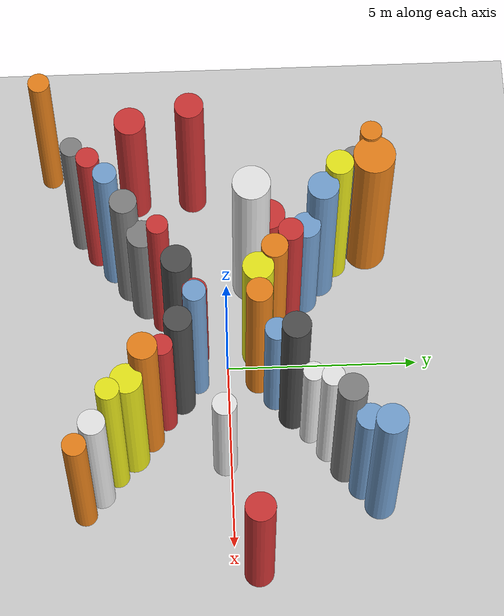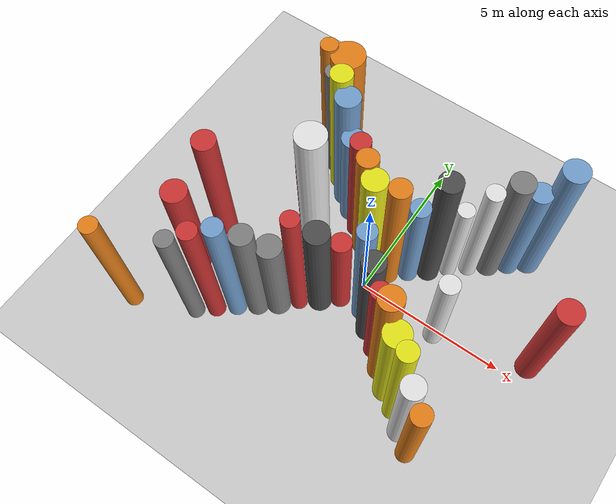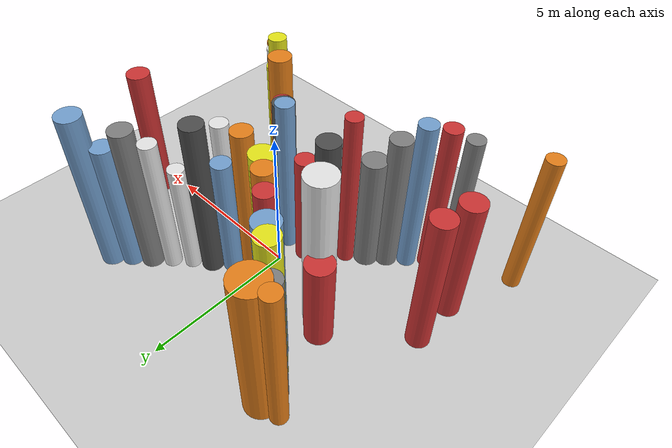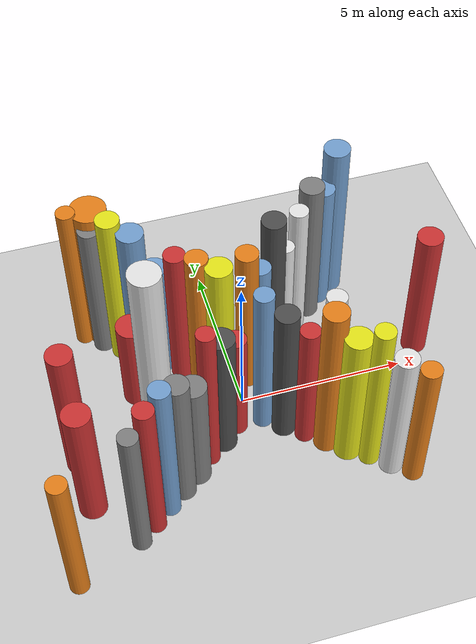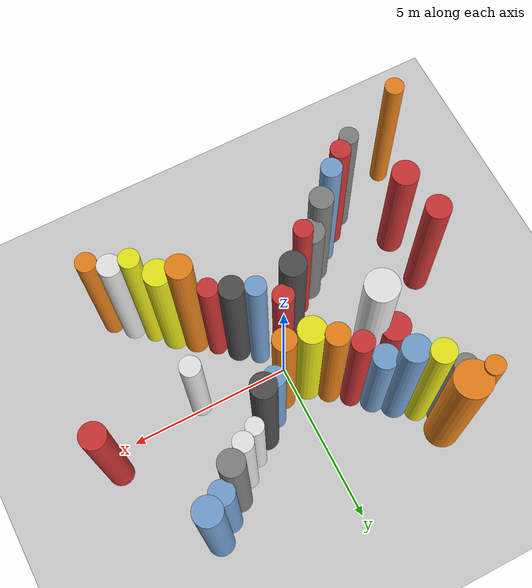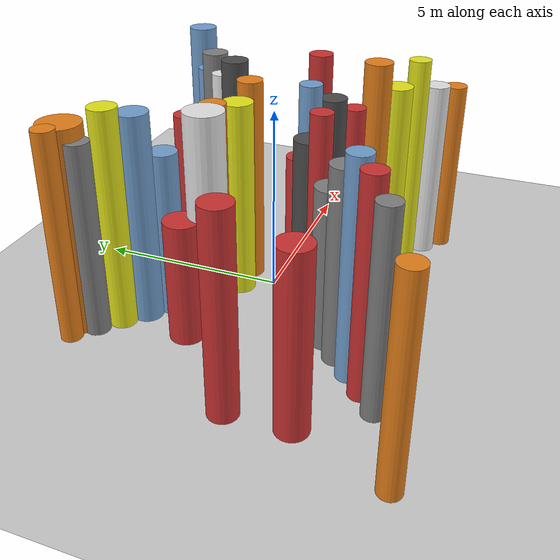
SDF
<?xml version='1.0'?>
<sdf version='1.6'>
  <world name='routeA_rl_v1__dense_recovery__rl_test__bottleneck_corridor__000018'>
    <!-- Sun light -->
    <light name='sun' type='directional'>
      <cast_shadows>1</cast_shadows>
      <pose>0 0 10 0 0 0</pose>
      <diffuse>0.8 0.8 0.8 1</diffuse>
      <specular>0.2 0.2 0.2 1</specular>
      <attenuation>
        <range>1000</range>
        <constant>0.9</constant>
        <linear>0.01</linear>
        <quadratic>0.001</quadratic>
      </attenuation>
      <direction>-0.5 0.1 -0.9</direction>
    </light>

    <!-- Ground plane -->
    <model name='ground_plane'>
      <static>1</static>
      <link name='link'>
        <collision name='collision'>
          <geometry>
            <plane>
              <normal>0 0 1</normal>
              <size>100 100</size>
            </plane>
          </geometry>
          <surface>
            <contact>
              <collide_bitmask>65535</collide_bitmask>
              <ode/>
            </contact>
            <friction>
              <ode>
                <mu>100</mu>
                <mu2>50</mu2>
              </ode>
              <torsional><ode/></torsional>
            </friction>
            <bounce/>
          </surface>
          <max_contacts>10</max_contacts>
        </collision>
        <visual name='visual'>
          <cast_shadows>0</cast_shadows>
          <geometry>
            <plane>
              <normal>0 0 1</normal>
              <size>100 100</size>
            </plane>
          </geometry>
          <material>
            <script>
              <uri>file://media/materials/scripts/gazebo.material</uri>
              <n>Gazebo/Grey</n>
            </script>
          </material>
        </visual>
      </link>
    </model>

    <!-- Environment -->
    <magnetic_field>6e-06 2.3e-05 -4.2e-05</magnetic_field>
    <atmosphere type='adiabatic'/>
    <physics name='default_physics' default='0' type='ode'>
      <gravity>0 0 -9.8</gravity>
      <max_step_size>0.004</max_step_size>
      <real_time_factor>1</real_time_factor>
      <real_time_update_rate>250</real_time_update_rate>
    </physics>
    <scene>
      <ambient>0.4 0.4 0.4 1</ambient>
      <background>0.7 0.7 0.7 1</background>
      <shadows>1</shadows>
    </scene>
    <wind/>
    <spherical_coordinates>
      <surface_model>EARTH_WGS84</surface_model>
      <latitude_deg>0</latitude_deg>
      <longitude_deg>0</longitude_deg>
      <elevation>0</elevation>
      <heading_deg>0</heading_deg>
    </spherical_coordinates>

    <!-- ============ OBSTACLES (40) ============ -->
    <model name='funnel_l_0'>
      <static>1</static>
      <link name='link'>
        <visual name='visual'>
          <geometry>
            <cylinder>
              <radius>0.2794</radius>
              <length>5.1567</length>
            </cylinder>
          </geometry>
          <material>
            <script>
              <n>Gazebo/Grey</n>
              <uri>file://media/materials/scripts/gazebo.material</uri>
            </script>
            <ambient>0.5 0.5 0.5 1</ambient>
          </material>
        </visual>
        <collision name='collision'>
          <geometry>
            <cylinder>
              <radius>0.2794</radius>
              <length>5.1567</length>
            </cylinder>
          </geometry>
          <max_contacts>10</max_contacts>
          <surface>
            <contact><ode/></contact>
            <bounce/>
            <friction>
              <ode><mu>1</mu><mu2>1</mu2></ode>
              <torsional><ode/></torsional>
            </friction>
          </surface>
        </collision>
      </link>
      <pose>-4.0000 -3.8000 2.5783 0 0 0.0000</pose>
    </model>

    <model name='funnel_r_0'>
      <static>1</static>
      <link name='link'>
        <visual name='visual'>
          <geometry>
            <cylinder>
              <radius>0.2776</radius>
              <length>5.4865</length>
            </cylinder>
          </geometry>
          <material>
            <script>
              <n>Gazebo/Orange</n>
              <uri>file://media/materials/scripts/gazebo.material</uri>
            </script>
            <ambient>0.9 0.5 0.1 1</ambient>
          </material>
        </visual>
        <collision name='collision'>
          <geometry>
            <cylinder>
              <radius>0.2776</radius>
              <length>5.4865</length>
            </cylinder>
          </geometry>
          <max_contacts>10</max_contacts>
          <surface>
            <contact><ode/></contact>
            <bounce/>
            <friction>
              <ode><mu>1</mu><mu2>1</mu2></ode>
              <torsional><ode/></torsional>
            </friction>
          </surface>
        </collision>
      </link>
      <pose>-4.0000 3.8000 2.7433 0 0 0.0000</pose>
    </model>

    <model name='funnel_l_1'>
      <static>1</static>
      <link name='link'>
        <visual name='visual'>
          <geometry>
            <cylinder>
              <radius>0.2926</radius>
              <length>5.4997</length>
            </cylinder>
          </geometry>
          <material>
            <script>
              <n>Gazebo/Red</n>
              <uri>file://media/materials/scripts/gazebo.material</uri>
            </script>
            <ambient>0.8 0.2 0.2 1</ambient>
          </material>
        </visual>
        <collision name='collision'>
          <geometry>
            <cylinder>
              <radius>0.2926</radius>
              <length>5.4997</length>
            </cylinder>
          </geometry>
          <max_contacts>10</max_contacts>
          <surface>
            <contact><ode/></contact>
            <bounce/>
            <friction>
              <ode><mu>1</mu><mu2>1</mu2></ode>
              <torsional><ode/></torsional>
            </friction>
          </surface>
        </collision>
      </link>
      <pose>-3.4857 -3.3714 2.7498 0 0 0.0000</pose>
    </model>

    <model name='funnel_r_1'>
      <static>1</static>
      <link name='link'>
        <visual name='visual'>
          <geometry>
            <cylinder>
              <radius>0.3191</radius>
              <length>5.0633</length>
            </cylinder>
          </geometry>
          <material>
            <script>
              <n>Gazebo/Grey</n>
              <uri>file://media/materials/scripts/gazebo.material</uri>
            </script>
            <ambient>0.5 0.5 0.5 1</ambient>
          </material>
        </visual>
        <collision name='collision'>
          <geometry>
            <cylinder>
              <radius>0.3191</radius>
              <length>5.0633</length>
            </cylinder>
          </geometry>
          <max_contacts>10</max_contacts>
          <surface>
            <contact><ode/></contact>
            <bounce/>
            <friction>
              <ode><mu>1</mu><mu2>1</mu2></ode>
              <torsional><ode/></torsional>
            </friction>
          </surface>
        </collision>
      </link>
      <pose>-3.4857 3.3714 2.5317 0 0 0.0000</pose>
    </model>

    <model name='funnel_l_2'>
      <static>1</static>
      <link name='link'>
        <visual name='visual'>
          <geometry>
            <cylinder>
              <radius>0.3028</radius>
              <length>5.5939</length>
            </cylinder>
          </geometry>
          <material>
            <script>
              <n>Gazebo/Blue</n>
              <uri>file://media/materials/scripts/gazebo.material</uri>
            </script>
            <ambient>0.447 0.624 0.812 1</ambient>
          </material>
        </visual>
        <collision name='collision'>
          <geometry>
            <cylinder>
              <radius>0.3028</radius>
              <length>5.5939</length>
            </cylinder>
          </geometry>
          <max_contacts>10</max_contacts>
          <surface>
            <contact><ode/></contact>
            <bounce/>
            <friction>
              <ode><mu>1</mu><mu2>1</mu2></ode>
              <torsional><ode/></torsional>
            </friction>
          </surface>
        </collision>
      </link>
      <pose>-2.9714 -2.9429 2.7969 0 0 0.0000</pose>
    </model>

    <model name='funnel_r_2'>
      <static>1</static>
      <link name='link'>
        <visual name='visual'>
          <geometry>
            <cylinder>
              <radius>0.3510</radius>
              <length>5.7535</length>
            </cylinder>
          </geometry>
          <material>
            <script>
              <n>Gazebo/Yellow</n>
              <uri>file://media/materials/scripts/gazebo.material</uri>
            </script>
            <ambient>0.9 0.9 0.1 1</ambient>
          </material>
        </visual>
        <collision name='collision'>
          <geometry>
            <cylinder>
              <radius>0.3510</radius>
              <length>5.7535</length>
            </cylinder>
          </geometry>
          <max_contacts>10</max_contacts>
          <surface>
            <contact><ode/></contact>
            <bounce/>
            <friction>
              <ode><mu>1</mu><mu2>1</mu2></ode>
              <torsional><ode/></torsional>
            </friction>
          </surface>
        </collision>
      </link>
      <pose>-2.9714 2.9429 2.8767 0 0 0.0000</pose>
    </model>

    <model name='funnel_l_3'>
      <static>1</static>
      <link name='link'>
        <visual name='visual'>
          <geometry>
            <cylinder>
              <radius>0.3493</radius>
              <length>5.0410</length>
            </cylinder>
          </geometry>
          <material>
            <script>
              <n>Gazebo/Grey</n>
              <uri>file://media/materials/scripts/gazebo.material</uri>
            </script>
            <ambient>0.5 0.5 0.5 1</ambient>
          </material>
        </visual>
        <collision name='collision'>
          <geometry>
            <cylinder>
              <radius>0.3493</radius>
              <length>5.0410</length>
            </cylinder>
          </geometry>
          <max_contacts>10</max_contacts>
          <surface>
            <contact><ode/></contact>
            <bounce/>
            <friction>
              <ode><mu>1</mu><mu2>1</mu2></ode>
              <torsional><ode/></torsional>
            </friction>
          </surface>
        </collision>
      </link>
      <pose>-2.4571 -2.5143 2.5205 0 0 0.0000</pose>
    </model>

    <model name='funnel_r_3'>
      <static>1</static>
      <link name='link'>
        <visual name='visual'>
          <geometry>
            <cylinder>
              <radius>0.3969</radius>
              <length>5.5139</length>
            </cylinder>
          </geometry>
          <material>
            <script>
              <n>Gazebo/Blue</n>
              <uri>file://media/materials/scripts/gazebo.material</uri>
            </script>
            <ambient>0.447 0.624 0.812 1</ambient>
          </material>
        </visual>
        <collision name='collision'>
          <geometry>
            <cylinder>
              <radius>0.3969</radius>
              <length>5.5139</length>
            </cylinder>
          </geometry>
          <max_contacts>10</max_contacts>
          <surface>
            <contact><ode/></contact>
            <bounce/>
            <friction>
              <ode><mu>1</mu><mu2>1</mu2></ode>
              <torsional><ode/></torsional>
            </friction>
          </surface>
        </collision>
      </link>
      <pose>-2.4571 2.5143 2.7569 0 0 0.0000</pose>
    </model>

    <model name='funnel_l_4'>
      <static>1</static>
      <link name='link'>
        <visual name='visual'>
          <geometry>
            <cylinder>
              <radius>0.3925</radius>
              <length>4.2149</length>
            </cylinder>
          </geometry>
          <material>
            <script>
              <n>Gazebo/Grey</n>
              <uri>file://media/materials/scripts/gazebo.material</uri>
            </script>
            <ambient>0.5 0.5 0.5 1</ambient>
          </material>
        </visual>
        <collision name='collision'>
          <geometry>
            <cylinder>
              <radius>0.3925</radius>
              <length>4.2149</length>
            </cylinder>
          </geometry>
          <max_contacts>10</max_contacts>
          <surface>
            <contact><ode/></contact>
            <bounce/>
            <friction>
              <ode><mu>1</mu><mu2>1</mu2></ode>
              <torsional><ode/></torsional>
            </friction>
          </surface>
        </collision>
      </link>
      <pose>-1.9429 -2.0857 2.1074 0 0 0.0000</pose>
    </model>

    <model name='funnel_r_4'>
      <static>1</static>
      <link name='link'>
        <visual name='visual'>
          <geometry>
            <cylinder>
              <radius>0.3689</radius>
              <length>4.4056</length>
            </cylinder>
          </geometry>
          <material>
            <script>
              <n>Gazebo/Blue</n>
              <uri>file://media/materials/scripts/gazebo.material</uri>
            </script>
            <ambient>0.447 0.624 0.812 1</ambient>
          </material>
        </visual>
        <collision name='collision'>
          <geometry>
            <cylinder>
              <radius>0.3689</radius>
              <length>4.4056</length>
            </cylinder>
          </geometry>
          <max_contacts>10</max_contacts>
          <surface>
            <contact><ode/></contact>
            <bounce/>
            <friction>
              <ode><mu>1</mu><mu2>1</mu2></ode>
              <torsional><ode/></torsional>
            </friction>
          </surface>
        </collision>
      </link>
      <pose>-1.9429 2.0857 2.2028 0 0 0.0000</pose>
    </model>

    <model name='funnel_l_5'>
      <static>1</static>
      <link name='link'>
        <visual name='visual'>
          <geometry>
            <cylinder>
              <radius>0.2713</radius>
              <length>5.7019</length>
            </cylinder>
          </geometry>
          <material>
            <script>
              <n>Gazebo/Red</n>
              <uri>file://media/materials/scripts/gazebo.material</uri>
            </script>
            <ambient>0.8 0.2 0.2 1</ambient>
          </material>
        </visual>
        <collision name='collision'>
          <geometry>
            <cylinder>
              <radius>0.2713</radius>
              <length>5.7019</length>
            </cylinder>
          </geometry>
          <max_contacts>10</max_contacts>
          <surface>
            <contact><ode/></contact>
            <bounce/>
            <friction>
              <ode><mu>1</mu><mu2>1</mu2></ode>
              <torsional><ode/></torsional>
            </friction>
          </surface>
        </collision>
      </link>
      <pose>-1.4286 -1.6571 2.8509 0 0 0.0000</pose>
    </model>

    <model name='funnel_r_5'>
      <static>1</static>
      <link name='link'>
        <visual name='visual'>
          <geometry>
            <cylinder>
              <radius>0.3190</radius>
              <length>5.2060</length>
            </cylinder>
          </geometry>
          <material>
            <script>
              <n>Gazebo/Red</n>
              <uri>file://media/materials/scripts/gazebo.material</uri>
            </script>
            <ambient>0.8 0.2 0.2 1</ambient>
          </material>
        </visual>
        <collision name='collision'>
          <geometry>
            <cylinder>
              <radius>0.3190</radius>
              <length>5.2060</length>
            </cylinder>
          </geometry>
          <max_contacts>10</max_contacts>
          <surface>
            <contact><ode/></contact>
            <bounce/>
            <friction>
              <ode><mu>1</mu><mu2>1</mu2></ode>
              <torsional><ode/></torsional>
            </friction>
          </surface>
        </collision>
      </link>
      <pose>-1.4286 1.6571 2.6030 0 0 0.0000</pose>
    </model>

    <model name='funnel_l_6'>
      <static>1</static>
      <link name='link'>
        <visual name='visual'>
          <geometry>
            <cylinder>
              <radius>0.3890</radius>
              <length>4.8120</length>
            </cylinder>
          </geometry>
          <material>
            <script>
              <n>Gazebo/DarkGrey</n>
              <uri>file://media/materials/scripts/gazebo.material</uri>
            </script>
            <ambient>0.3 0.3 0.3 1</ambient>
          </material>
        </visual>
        <collision name='collision'>
          <geometry>
            <cylinder>
              <radius>0.3890</radius>
              <length>4.8120</length>
            </cylinder>
          </geometry>
          <max_contacts>10</max_contacts>
          <surface>
            <contact><ode/></contact>
            <bounce/>
            <friction>
              <ode><mu>1</mu><mu2>1</mu2></ode>
              <torsional><ode/></torsional>
            </friction>
          </surface>
        </collision>
      </link>
      <pose>-0.9143 -1.2286 2.4060 0 0 0.0000</pose>
    </model>

    <model name='funnel_r_6'>
      <static>1</static>
      <link name='link'>
        <visual name='visual'>
          <geometry>
            <cylinder>
              <radius>0.3374</radius>
              <length>5.3600</length>
            </cylinder>
          </geometry>
          <material>
            <script>
              <n>Gazebo/Orange</n>
              <uri>file://media/materials/scripts/gazebo.material</uri>
            </script>
            <ambient>0.9 0.5 0.1 1</ambient>
          </material>
        </visual>
        <collision name='collision'>
          <geometry>
            <cylinder>
              <radius>0.3374</radius>
              <length>5.3600</length>
            </cylinder>
          </geometry>
          <max_contacts>10</max_contacts>
          <surface>
            <contact><ode/></contact>
            <bounce/>
            <friction>
              <ode><mu>1</mu><mu2>1</mu2></ode>
              <torsional><ode/></torsional>
            </friction>
          </surface>
        </collision>
      </link>
      <pose>-0.9143 1.2286 2.6800 0 0 0.0000</pose>
    </model>

    <model name='funnel_l_7'>
      <static>1</static>
      <link name='link'>
        <visual name='visual'>
          <geometry>
            <cylinder>
              <radius>0.3194</radius>
              <length>4.0968</length>
            </cylinder>
          </geometry>
          <material>
            <script>
              <n>Gazebo/Red</n>
              <uri>file://media/materials/scripts/gazebo.material</uri>
            </script>
            <ambient>0.8 0.2 0.2 1</ambient>
          </material>
        </visual>
        <collision name='collision'>
          <geometry>
            <cylinder>
              <radius>0.3194</radius>
              <length>4.0968</length>
            </cylinder>
          </geometry>
          <max_contacts>10</max_contacts>
          <surface>
            <contact><ode/></contact>
            <bounce/>
            <friction>
              <ode><mu>1</mu><mu2>1</mu2></ode>
              <torsional><ode/></torsional>
            </friction>
          </surface>
        </collision>
      </link>
      <pose>-0.4000 -0.8000 2.0484 0 0 0.0000</pose>
    </model>

    <model name='funnel_r_7'>
      <static>1</static>
      <link name='link'>
        <visual name='visual'>
          <geometry>
            <cylinder>
              <radius>0.3954</radius>
              <length>5.2831</length>
            </cylinder>
          </geometry>
          <material>
            <script>
              <n>Gazebo/Yellow</n>
              <uri>file://media/materials/scripts/gazebo.material</uri>
            </script>
            <ambient>0.9 0.9 0.1 1</ambient>
          </material>
        </visual>
        <collision name='collision'>
          <geometry>
            <cylinder>
              <radius>0.3954</radius>
              <length>5.2831</length>
            </cylinder>
          </geometry>
          <max_contacts>10</max_contacts>
          <surface>
            <contact><ode/></contact>
            <bounce/>
            <friction>
              <ode><mu>1</mu><mu2>1</mu2></ode>
              <torsional><ode/></torsional>
            </friction>
          </surface>
        </collision>
      </link>
      <pose>-0.4000 0.8000 2.6415 0 0 0.0000</pose>
    </model>

    <model name='funnel_out_l_0'>
      <static>1</static>
      <link name='link'>
        <visual name='visual'>
          <geometry>
            <cylinder>
              <radius>0.2914</radius>
              <length>5.6717</length>
            </cylinder>
          </geometry>
          <material>
            <script>
              <n>Gazebo/Blue</n>
              <uri>file://media/materials/scripts/gazebo.material</uri>
            </script>
            <ambient>0.447 0.624 0.812 1</ambient>
          </material>
        </visual>
        <collision name='collision'>
          <geometry>
            <cylinder>
              <radius>0.2914</radius>
              <length>5.6717</length>
            </cylinder>
          </geometry>
          <max_contacts>10</max_contacts>
          <surface>
            <contact><ode/></contact>
            <bounce/>
            <friction>
              <ode><mu>1</mu><mu2>1</mu2></ode>
              <torsional><ode/></torsional>
            </friction>
          </surface>
        </collision>
      </link>
      <pose>0.4000 -0.8000 2.8359 0 0 0.0000</pose>
    </model>

    <model name='funnel_out_r_0'>
      <static>1</static>
      <link name='link'>
        <visual name='visual'>
          <geometry>
            <cylinder>
              <radius>0.3345</radius>
              <length>5.5892</length>
            </cylinder>
          </geometry>
          <material>
            <script>
              <n>Gazebo/Orange</n>
              <uri>file://media/materials/scripts/gazebo.material</uri>
            </script>
            <ambient>0.9 0.5 0.1 1</ambient>
          </material>
        </visual>
        <collision name='collision'>
          <geometry>
            <cylinder>
              <radius>0.3345</radius>
              <length>5.5892</length>
            </cylinder>
          </geometry>
          <max_contacts>10</max_contacts>
          <surface>
            <contact><ode/></contact>
            <bounce/>
            <friction>
              <ode><mu>1</mu><mu2>1</mu2></ode>
              <torsional><ode/></torsional>
            </friction>
          </surface>
        </collision>
      </link>
      <pose>0.4000 0.8000 2.7946 0 0 0.0000</pose>
    </model>

    <model name='funnel_out_l_1'>
      <static>1</static>
      <link name='link'>
        <visual name='visual'>
          <geometry>
            <cylinder>
              <radius>0.3530</radius>
              <length>5.2015</length>
            </cylinder>
          </geometry>
          <material>
            <script>
              <n>Gazebo/DarkGrey</n>
              <uri>file://media/materials/scripts/gazebo.material</uri>
            </script>
            <ambient>0.3 0.3 0.3 1</ambient>
          </material>
        </visual>
        <collision name='collision'>
          <geometry>
            <cylinder>
              <radius>0.3530</radius>
              <length>5.2015</length>
            </cylinder>
          </geometry>
          <max_contacts>10</max_contacts>
          <surface>
            <contact><ode/></contact>
            <bounce/>
            <friction>
              <ode><mu>1</mu><mu2>1</mu2></ode>
              <torsional><ode/></torsional>
            </friction>
          </surface>
        </collision>
      </link>
      <pose>0.9143 -1.2286 2.6008 0 0 0.0000</pose>
    </model>

    <model name='funnel_out_r_1'>
      <static>1</static>
      <link name='link'>
        <visual name='visual'>
          <geometry>
            <cylinder>
              <radius>0.3157</radius>
              <length>4.4105</length>
            </cylinder>
          </geometry>
          <material>
            <script>
              <n>Gazebo/Blue</n>
              <uri>file://media/materials/scripts/gazebo.material</uri>
            </script>
            <ambient>0.447 0.624 0.812 1</ambient>
          </material>
        </visual>
        <collision name='collision'>
          <geometry>
            <cylinder>
              <radius>0.3157</radius>
              <length>4.4105</length>
            </cylinder>
          </geometry>
          <max_contacts>10</max_contacts>
          <surface>
            <contact><ode/></contact>
            <bounce/>
            <friction>
              <ode><mu>1</mu><mu2>1</mu2></ode>
              <torsional><ode/></torsional>
            </friction>
          </surface>
        </collision>
      </link>
      <pose>0.9143 1.2286 2.2052 0 0 0.0000</pose>
    </model>

    <model name='funnel_out_l_2'>
      <static>1</static>
      <link name='link'>
        <visual name='visual'>
          <geometry>
            <cylinder>
              <radius>0.2907</radius>
              <length>4.8277</length>
            </cylinder>
          </geometry>
          <material>
            <script>
              <n>Gazebo/Red</n>
              <uri>file://media/materials/scripts/gazebo.material</uri>
            </script>
            <ambient>0.8 0.2 0.2 1</ambient>
          </material>
        </visual>
        <collision name='collision'>
          <geometry>
            <cylinder>
              <radius>0.2907</radius>
              <length>4.8277</length>
            </cylinder>
          </geometry>
          <max_contacts>10</max_contacts>
          <surface>
            <contact><ode/></contact>
            <bounce/>
            <friction>
              <ode><mu>1</mu><mu2>1</mu2></ode>
              <torsional><ode/></torsional>
            </friction>
          </surface>
        </collision>
      </link>
      <pose>1.4286 -1.6571 2.4138 0 0 0.0000</pose>
    </model>

    <model name='funnel_out_r_2'>
      <static>1</static>
      <link name='link'>
        <visual name='visual'>
          <geometry>
            <cylinder>
              <radius>0.3628</radius>
              <length>5.7124</length>
            </cylinder>
          </geometry>
          <material>
            <script>
              <n>Gazebo/DarkGrey</n>
              <uri>file://media/materials/scripts/gazebo.material</uri>
            </script>
            <ambient>0.3 0.3 0.3 1</ambient>
          </material>
        </visual>
        <collision name='collision'>
          <geometry>
            <cylinder>
              <radius>0.3628</radius>
              <length>5.7124</length>
            </cylinder>
          </geometry>
          <max_contacts>10</max_contacts>
          <surface>
            <contact><ode/></contact>
            <bounce/>
            <friction>
              <ode><mu>1</mu><mu2>1</mu2></ode>
              <torsional><ode/></torsional>
            </friction>
          </surface>
        </collision>
      </link>
      <pose>1.4286 1.6571 2.8562 0 0 0.0000</pose>
    </model>

    <model name='funnel_out_l_3'>
      <static>1</static>
      <link name='link'>
        <visual name='visual'>
          <geometry>
            <cylinder>
              <radius>0.3658</radius>
              <length>5.9187</length>
            </cylinder>
          </geometry>
          <material>
            <script>
              <n>Gazebo/Orange</n>
              <uri>file://media/materials/scripts/gazebo.material</uri>
            </script>
            <ambient>0.9 0.5 0.1 1</ambient>
          </material>
        </visual>
        <collision name='collision'>
          <geometry>
            <cylinder>
              <radius>0.3658</radius>
              <length>5.9187</length>
            </cylinder>
          </geometry>
          <max_contacts>10</max_contacts>
          <surface>
            <contact><ode/></contact>
            <bounce/>
            <friction>
              <ode><mu>1</mu><mu2>1</mu2></ode>
              <torsional><ode/></torsional>
            </friction>
          </surface>
        </collision>
      </link>
      <pose>1.9429 -2.0857 2.9593 0 0 0.0000</pose>
    </model>

    <model name='funnel_out_r_3'>
      <static>1</static>
      <link name='link'>
        <visual name='visual'>
          <geometry>
            <cylinder>
              <radius>0.2646</radius>
              <length>4.0647</length>
            </cylinder>
          </geometry>
          <material>
            <script>
              <n>Gazebo/White</n>
              <uri>file://media/materials/scripts/gazebo.material</uri>
            </script>
            <ambient>0.9 0.9 0.9 1</ambient>
          </material>
        </visual>
        <collision name='collision'>
          <geometry>
            <cylinder>
              <radius>0.2646</radius>
              <length>4.0647</length>
            </cylinder>
          </geometry>
          <max_contacts>10</max_contacts>
          <surface>
            <contact><ode/></contact>
            <bounce/>
            <friction>
              <ode><mu>1</mu><mu2>1</mu2></ode>
              <torsional><ode/></torsional>
            </friction>
          </surface>
        </collision>
      </link>
      <pose>1.9429 2.0857 2.0324 0 0 0.0000</pose>
    </model>

    <model name='funnel_out_l_4'>
      <static>1</static>
      <link name='link'>
        <visual name='visual'>
          <geometry>
            <cylinder>
              <radius>0.3992</radius>
              <length>5.1797</length>
            </cylinder>
          </geometry>
          <material>
            <script>
              <n>Gazebo/Yellow</n>
              <uri>file://media/materials/scripts/gazebo.material</uri>
            </script>
            <ambient>0.9 0.9 0.1 1</ambient>
          </material>
        </visual>
        <collision name='collision'>
          <geometry>
            <cylinder>
              <radius>0.3992</radius>
              <length>5.1797</length>
            </cylinder>
          </geometry>
          <max_contacts>10</max_contacts>
          <surface>
            <contact><ode/></contact>
            <bounce/>
            <friction>
              <ode><mu>1</mu><mu2>1</mu2></ode>
              <torsional><ode/></torsional>
            </friction>
          </surface>
        </collision>
      </link>
      <pose>2.4571 -2.5143 2.5898 0 0 0.0000</pose>
    </model>

    <model name='funnel_out_r_4'>
      <static>1</static>
      <link name='link'>
        <visual name='visual'>
          <geometry>
            <cylinder>
              <radius>0.2883</radius>
              <length>4.9503</length>
            </cylinder>
          </geometry>
          <material>
            <script>
              <n>Gazebo/White</n>
              <uri>file://media/materials/scripts/gazebo.material</uri>
            </script>
            <ambient>0.9 0.9 0.9 1</ambient>
          </material>
        </visual>
        <collision name='collision'>
          <geometry>
            <cylinder>
              <radius>0.2883</radius>
              <length>4.9503</length>
            </cylinder>
          </geometry>
          <max_contacts>10</max_contacts>
          <surface>
            <contact><ode/></contact>
            <bounce/>
            <friction>
              <ode><mu>1</mu><mu2>1</mu2></ode>
              <torsional><ode/></torsional>
            </friction>
          </surface>
        </collision>
      </link>
      <pose>2.4571 2.5143 2.4751 0 0 0.0000</pose>
    </model>

    <model name='funnel_out_l_5'>
      <static>1</static>
      <link name='link'>
        <visual name='visual'>
          <geometry>
            <cylinder>
              <radius>0.2940</radius>
              <length>5.7854</length>
            </cylinder>
          </geometry>
          <material>
            <script>
              <n>Gazebo/Yellow</n>
              <uri>file://media/materials/scripts/gazebo.material</uri>
            </script>
            <ambient>0.9 0.9 0.1 1</ambient>
          </material>
        </visual>
        <collision name='collision'>
          <geometry>
            <cylinder>
              <radius>0.2940</radius>
              <length>5.7854</length>
            </cylinder>
          </geometry>
          <max_contacts>10</max_contacts>
          <surface>
            <contact><ode/></contact>
            <bounce/>
            <friction>
              <ode><mu>1</mu><mu2>1</mu2></ode>
              <torsional><ode/></torsional>
            </friction>
          </surface>
        </collision>
      </link>
      <pose>2.9714 -2.9429 2.8927 0 0 0.0000</pose>
    </model>

    <model name='funnel_out_r_5'>
      <static>1</static>
      <link name='link'>
        <visual name='visual'>
          <geometry>
            <cylinder>
              <radius>0.3699</radius>
              <length>5.3772</length>
            </cylinder>
          </geometry>
          <material>
            <script>
              <n>Gazebo/Grey</n>
              <uri>file://media/materials/scripts/gazebo.material</uri>
            </script>
            <ambient>0.5 0.5 0.5 1</ambient>
          </material>
        </visual>
        <collision name='collision'>
          <geometry>
            <cylinder>
              <radius>0.3699</radius>
              <length>5.3772</length>
            </cylinder>
          </geometry>
          <max_contacts>10</max_contacts>
          <surface>
            <contact><ode/></contact>
            <bounce/>
            <friction>
              <ode><mu>1</mu><mu2>1</mu2></ode>
              <torsional><ode/></torsional>
            </friction>
          </surface>
        </collision>
      </link>
      <pose>2.9714 2.9429 2.6886 0 0 0.0000</pose>
    </model>

    <model name='funnel_out_l_6'>
      <static>1</static>
      <link name='link'>
        <visual name='visual'>
          <geometry>
            <cylinder>
              <radius>0.3415</radius>
              <length>4.9927</length>
            </cylinder>
          </geometry>
          <material>
            <script>
              <n>Gazebo/White</n>
              <uri>file://media/materials/scripts/gazebo.material</uri>
            </script>
            <ambient>0.9 0.9 0.9 1</ambient>
          </material>
        </visual>
        <collision name='collision'>
          <geometry>
            <cylinder>
              <radius>0.3415</radius>
              <length>4.9927</length>
            </cylinder>
          </geometry>
          <max_contacts>10</max_contacts>
          <surface>
            <contact><ode/></contact>
            <bounce/>
            <friction>
              <ode><mu>1</mu><mu2>1</mu2></ode>
              <torsional><ode/></torsional>
            </friction>
          </surface>
        </collision>
      </link>
      <pose>3.4857 -3.3714 2.4963 0 0 0.0000</pose>
    </model>

    <model name='funnel_out_r_6'>
      <static>1</static>
      <link name='link'>
        <visual name='visual'>
          <geometry>
            <cylinder>
              <radius>0.3531</radius>
              <length>4.7357</length>
            </cylinder>
          </geometry>
          <material>
            <script>
              <n>Gazebo/Blue</n>
              <uri>file://media/materials/scripts/gazebo.material</uri>
            </script>
            <ambient>0.447 0.624 0.812 1</ambient>
          </material>
        </visual>
        <collision name='collision'>
          <geometry>
            <cylinder>
              <radius>0.3531</radius>
              <length>4.7357</length>
            </cylinder>
          </geometry>
          <max_contacts>10</max_contacts>
          <surface>
            <contact><ode/></contact>
            <bounce/>
            <friction>
              <ode><mu>1</mu><mu2>1</mu2></ode>
              <torsional><ode/></torsional>
            </friction>
          </surface>
        </collision>
      </link>
      <pose>3.4857 3.3714 2.3679 0 0 0.0000</pose>
    </model>

    <model name='funnel_out_l_7'>
      <static>1</static>
      <link name='link'>
        <visual name='visual'>
          <geometry>
            <cylinder>
              <radius>0.3000</radius>
              <length>4.8656</length>
            </cylinder>
          </geometry>
          <material>
            <script>
              <n>Gazebo/Orange</n>
              <uri>file://media/materials/scripts/gazebo.material</uri>
            </script>
            <ambient>0.9 0.5 0.1 1</ambient>
          </material>
        </visual>
        <collision name='collision'>
          <geometry>
            <cylinder>
              <radius>0.3000</radius>
              <length>4.8656</length>
            </cylinder>
          </geometry>
          <max_contacts>10</max_contacts>
          <surface>
            <contact><ode/></contact>
            <bounce/>
            <friction>
              <ode><mu>1</mu><mu2>1</mu2></ode>
              <torsional><ode/></torsional>
            </friction>
          </surface>
        </collision>
      </link>
      <pose>4.0000 -3.8000 2.4328 0 0 0.0000</pose>
    </model>

    <model name='funnel_out_r_7'>
      <static>1</static>
      <link name='link'>
        <visual name='visual'>
          <geometry>
            <cylinder>
              <radius>0.3975</radius>
              <length>5.7843</length>
            </cylinder>
          </geometry>
          <material>
            <script>
              <n>Gazebo/Blue</n>
              <uri>file://media/materials/scripts/gazebo.material</uri>
            </script>
            <ambient>0.447 0.624 0.812 1</ambient>
          </material>
        </visual>
        <collision name='collision'>
          <geometry>
            <cylinder>
              <radius>0.3975</radius>
              <length>5.7843</length>
            </cylinder>
          </geometry>
          <max_contacts>10</max_contacts>
          <surface>
            <contact><ode/></contact>
            <bounce/>
            <friction>
              <ode><mu>1</mu><mu2>1</mu2></ode>
              <torsional><ode/></torsional>
            </friction>
          </surface>
        </collision>
      </link>
      <pose>4.0000 3.8000 2.8921 0 0 0.0000</pose>
    </model>

    <model name='bn_scatter_0'>
      <static>1</static>
      <link name='link'>
        <visual name='visual'>
          <geometry>
            <cylinder>
              <radius>0.4829</radius>
              <length>5.7818</length>
            </cylinder>
          </geometry>
          <material>
            <script>
              <n>Gazebo/White</n>
              <uri>file://media/materials/scripts/gazebo.material</uri>
            </script>
            <ambient>0.9 0.9 0.9 1</ambient>
          </material>
        </visual>
        <collision name='collision'>
          <geometry>
            <cylinder>
              <radius>0.4829</radius>
              <length>5.7818</length>
            </cylinder>
          </geometry>
          <max_contacts>10</max_contacts>
          <surface>
            <contact><ode/></contact>
            <bounce/>
            <friction>
              <ode><mu>1</mu><mu2>1</mu2></ode>
              <torsional><ode/></torsional>
            </friction>
          </surface>
        </collision>
      </link>
      <pose>-2.4607 0.7092 2.8909 0 0 0.0000</pose>
    </model>

    <model name='bn_scatter_1'>
      <static>1</static>
      <link name='link'>
        <visual name='visual'>
          <geometry>
            <cylinder>
              <radius>0.2801</radius>
              <length>5.1293</length>
            </cylinder>
          </geometry>
          <material>
            <script>
              <n>Gazebo/Orange</n>
              <uri>file://media/materials/scripts/gazebo.material</uri>
            </script>
            <ambient>0.9 0.5 0.1 1</ambient>
          </material>
        </visual>
        <collision name='collision'>
          <geometry>
            <cylinder>
              <radius>0.2801</radius>
              <length>5.1293</length>
            </cylinder>
          </geometry>
          <max_contacts>10</max_contacts>
          <surface>
            <contact><ode/></contact>
            <bounce/>
            <friction>
              <ode><mu>1</mu><mu2>1</mu2></ode>
              <torsional><ode/></torsional>
            </friction>
          </surface>
        </collision>
      </link>
      <pose>-5.9276 -4.6203 2.5646 0 0 0.0000</pose>
    </model>

    <model name='bn_scatter_2'>
      <static>1</static>
      <link name='link'>
        <visual name='visual'>
          <geometry>
            <cylinder>
              <radius>0.4454</radius>
              <length>3.2202</length>
            </cylinder>
          </geometry>
          <material>
            <script>
              <n>Gazebo/Red</n>
              <uri>file://media/materials/scripts/gazebo.material</uri>
            </script>
            <ambient>0.8 0.2 0.2 1</ambient>
          </material>
        </visual>
        <collision name='collision'>
          <geometry>
            <cylinder>
              <radius>0.4454</radius>
              <length>3.2202</length>
            </cylinder>
          </geometry>
          <max_contacts>10</max_contacts>
          <surface>
            <contact><ode/></contact>
            <bounce/>
            <friction>
              <ode><mu>1</mu><mu2>1</mu2></ode>
              <torsional><ode/></torsional>
            </friction>
          </surface>
        </collision>
      </link>
      <pose>-2.9168 1.1685 1.6101 0 0 0.0000</pose>
    </model>

    <model name='bn_scatter_3'>
      <static>1</static>
      <link name='link'>
        <visual name='visual'>
          <geometry>
            <cylinder>
              <radius>0.3110</radius>
              <length>4.0763</length>
            </cylinder>
          </geometry>
          <material>
            <script>
              <n>Gazebo/White</n>
              <uri>file://media/materials/scripts/gazebo.material</uri>
            </script>
            <ambient>0.9 0.9 0.9 1</ambient>
          </material>
        </visual>
        <collision name='collision'>
          <geometry>
            <cylinder>
              <radius>0.3110</radius>
              <length>4.0763</length>
            </cylinder>
          </geometry>
          <max_contacts>10</max_contacts>
          <surface>
            <contact><ode/></contact>
            <bounce/>
            <friction>
              <ode><mu>1</mu><mu2>1</mu2></ode>
              <torsional><ode/></torsional>
            </friction>
          </surface>
        </collision>
      </link>
      <pose>2.7351 -0.1527 2.0381 0 0 0.0000</pose>
    </model>

    <model name='bn_scatter_4'>
      <static>1</static>
      <link name='link'>
        <visual name='visual'>
          <geometry>
            <cylinder>
              <radius>0.3822</radius>
              <length>4.8294</length>
            </cylinder>
          </geometry>
          <material>
            <script>
              <n>Gazebo/Red</n>
              <uri>file://media/materials/scripts/gazebo.material</uri>
            </script>
            <ambient>0.8 0.2 0.2 1</ambient>
          </material>
        </visual>
        <collision name='collision'>
          <geometry>
            <cylinder>
              <radius>0.3822</radius>
              <length>4.8294</length>
            </cylinder>
          </geometry>
          <max_contacts>10</max_contacts>
          <surface>
            <contact><ode/></contact>
            <bounce/>
            <friction>
              <ode><mu>1</mu><mu2>1</mu2></ode>
              <torsional><ode/></torsional>
            </friction>
          </surface>
        </collision>
      </link>
      <pose>5.7318 0.6107 2.4147 0 0 0.0000</pose>
    </model>

    <model name='bn_scatter_5'>
      <static>1</static>
      <link name='link'>
        <visual name='visual'>
          <geometry>
            <cylinder>
              <radius>0.4038</radius>
              <length>4.5327</length>
            </cylinder>
          </geometry>
          <material>
            <script>
              <n>Gazebo/Red</n>
              <uri>file://media/materials/scripts/gazebo.material</uri>
            </script>
            <ambient>0.8 0.2 0.2 1</ambient>
          </material>
        </visual>
        <collision name='collision'>
          <geometry>
            <cylinder>
              <radius>0.4038</radius>
              <length>4.5327</length>
            </cylinder>
          </geometry>
          <max_contacts>10</max_contacts>
          <surface>
            <contact><ode/></contact>
            <bounce/>
            <friction>
              <ode><mu>1</mu><mu2>1</mu2></ode>
              <torsional><ode/></torsional>
            </friction>
          </surface>
        </collision>
      </link>
      <pose>-5.0574 -2.3303 2.2664 0 0 0.0000</pose>
    </model>

    <model name='bn_scatter_6'>
      <static>1</static>
      <link name='link'>
        <visual name='visual'>
          <geometry>
            <cylinder>
              <radius>0.3738</radius>
              <length>5.1153</length>
            </cylinder>
          </geometry>
          <material>
            <script>
              <n>Gazebo/Red</n>
              <uri>file://media/materials/scripts/gazebo.material</uri>
            </script>
            <ambient>0.8 0.2 0.2 1</ambient>
          </material>
        </visual>
        <collision name='collision'>
          <geometry>
            <cylinder>
              <radius>0.3738</radius>
              <length>5.1153</length>
            </cylinder>
          </geometry>
          <max_contacts>10</max_contacts>
          <surface>
            <contact><ode/></contact>
            <bounce/>
            <friction>
              <ode><mu>1</mu><mu2>1</mu2></ode>
              <torsional><ode/></torsional>
            </friction>
          </surface>
        </collision>
      </link>
      <pose>-5.1233 -0.7838 2.5577 0 0 0.0000</pose>
    </model>

    <model name='bn_scatter_7'>
      <static>1</static>
      <link name='link'>
        <visual name='visual'>
          <geometry>
            <cylinder>
              <radius>0.5366</radius>
              <length>5.3916</length>
            </cylinder>
          </geometry>
          <material>
            <script>
              <n>Gazebo/Orange</n>
              <uri>file://media/materials/scripts/gazebo.material</uri>
            </script>
            <ambient>0.9 0.5 0.1 1</ambient>
          </material>
        </visual>
        <collision name='collision'>
          <geometry>
            <cylinder>
              <radius>0.5366</radius>
              <length>5.3916</length>
            </cylinder>
          </geometry>
          <max_contacts>10</max_contacts>
          <surface>
            <contact><ode/></contact>
            <bounce/>
            <friction>
              <ode><mu>1</mu><mu2>1</mu2></ode>
              <torsional><ode/></torsional>
            </friction>
          </surface>
        </collision>
      </link>
      <pose>-3.3586 3.8491 2.6958 0 0 0.0000</pose>
    </model>

    <!-- GUI camera -->
    <gui fullscreen='0'>
      <camera name='user_camera'>
        <pose>-15 0 18 0 0.85 0.15</pose>
        <view_controller>orbit</view_controller>
        <projection_type>perspective</projection_type>
      </camera>
    </gui>
  </world>
</sdf>
